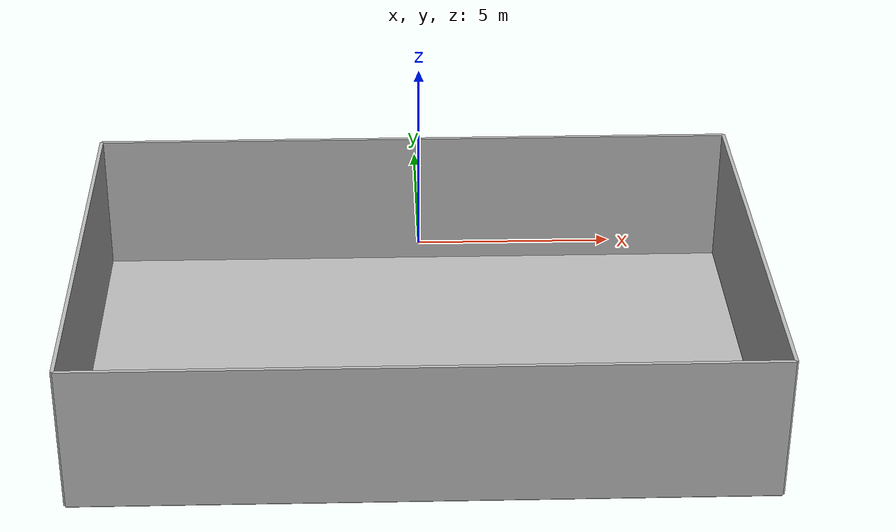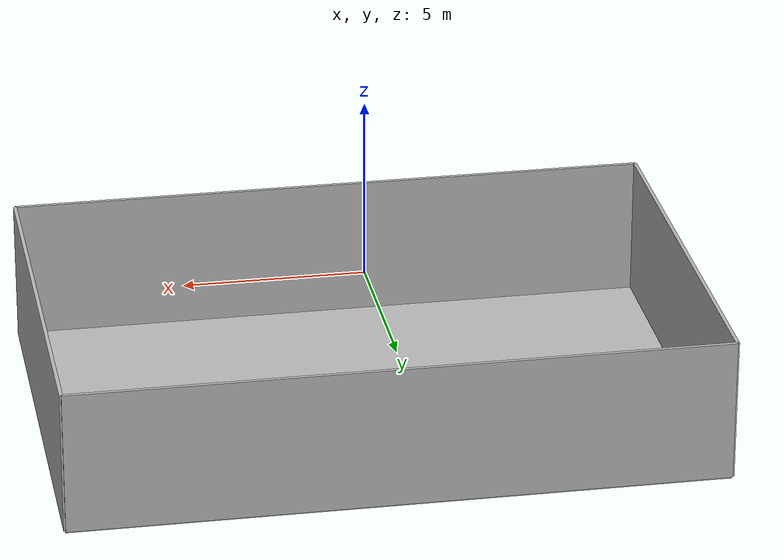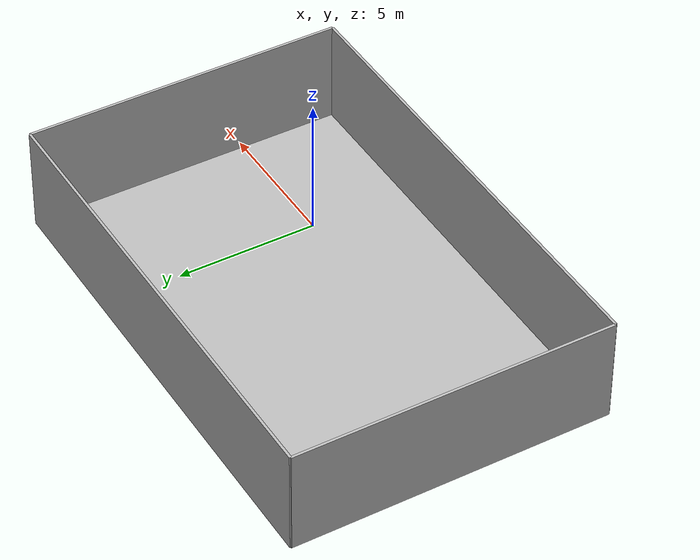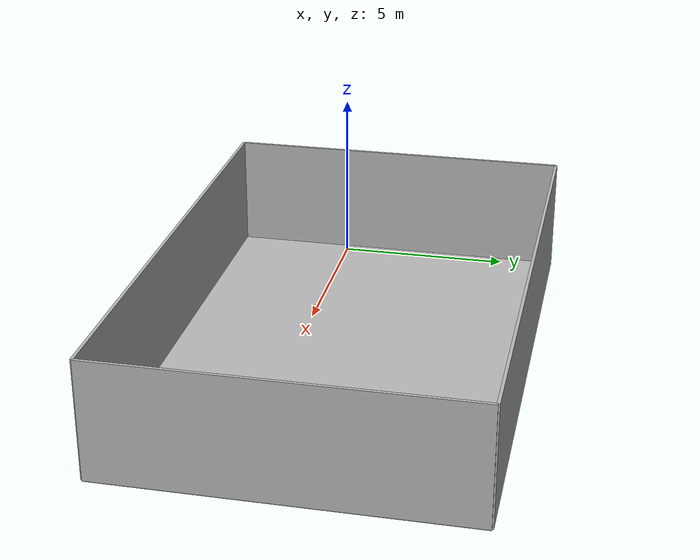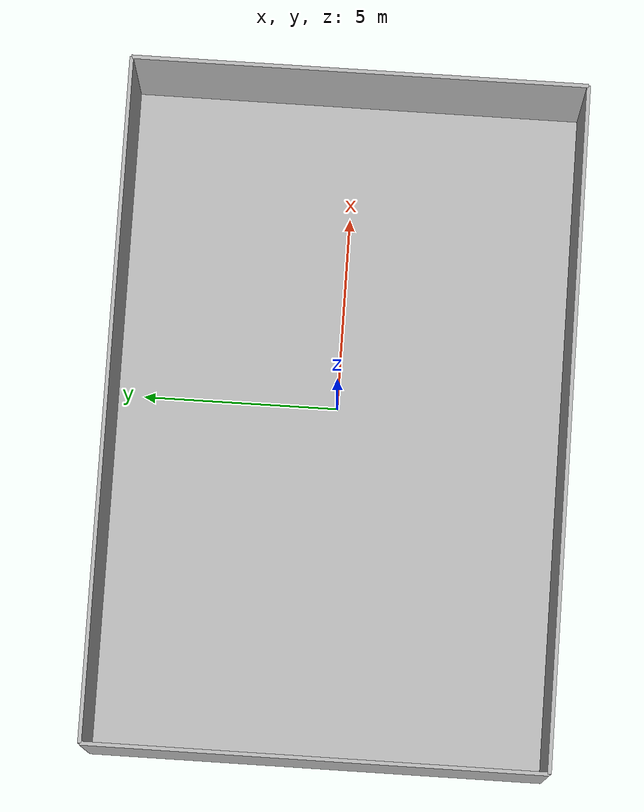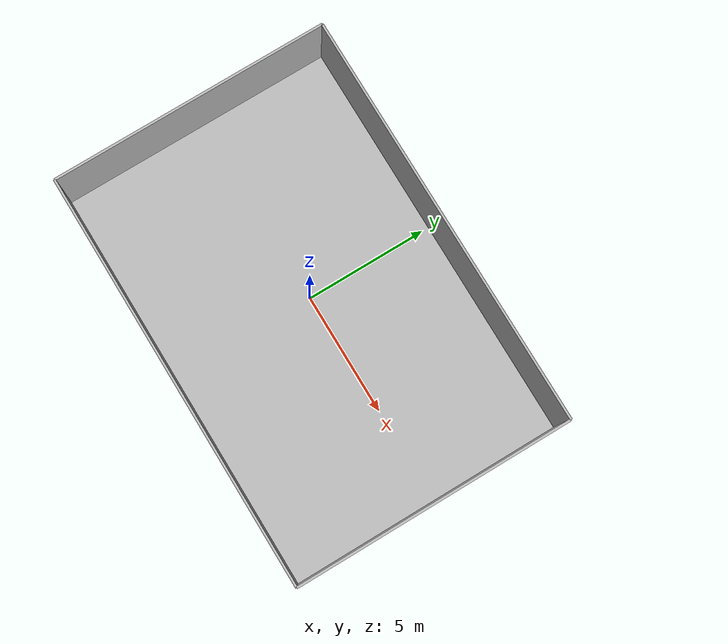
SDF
<?xml version="1.0" ?>
<sdf version="1.5">
  <world name="empty_underwater">
    <physics name="default_physics" default="true" type="ode">
      <max_step_size>0.01</max_step_size>
      <real_time_factor>1</real_time_factor>
      <real_time_update_rate>100</real_time_update_rate>
      <ode>
        <solver>
          <type>quick</type>
          <iters>50</iters>
          <sor>0.5</sor>
        </solver>
      </ode>
    </physics>
    <scene>
      <ambient>0.1 0.2 0.3 1.0</ambient>
      <sky>
        <clouds>
          <speed>12</speed>
        </clouds>
      </sky>
      <shadows>1</shadows>
      <fog>
        <color>0.1 0.2 0.3 1.0</color>
        <type>linear</type>
        <density>1.0</density>
        <start>0.1</start>
        <end>20</end>
      </fog>
    </scene>

    <!-- Origin placed somewhere in the middle of the North Sea  -->
    <spherical_coordinates>
      <latitude_deg>56.71897669633431</latitude_deg>
      <longitude_deg>3.515625</longitude_deg>
    </spherical_coordinates>

    <!-- Global light source -->
    <light type="directional" name="sun">
      <cast_shadows>true</cast_shadows>
      <pose>0 0 10 0 0 0</pose>
      <diffuse>0.2 0.2 0.2 1</diffuse>
      <specular>0.0 0.0 0.0 1</specular>
      <attenuation>
        <range>1000</range>
        <constant>0.9</constant>
        <linear>0.01</linear>
        <quadratic>0.001</quadratic>
        </attenuation>
      <direction>0.5 0.1 -0.9</direction>
    </light>

    <!-- Bounding box with sea surface -->
    <include>
      <uri>model://divewell</uri>
      <pose>0 0 0 0 0 0</pose>
    </include>

    <plugin name="underwater_current_plugin" filename="libuuv_underwater_current_ros_plugin.so">
      <namespace>hydrodynamics</namespace>
      <constant_current>
        <topic>current_velocity</topic>
        <velocity>
          <mean>0</mean>
          <min>0</min>
          <max>5</max>
          <mu>0.0</mu>
          <noiseAmp>0.0</noiseAmp>
        </velocity>

        <horizontal_angle>
          <mean>0</mean>
          <min>-3.141592653589793238</min>
          <max>3.141592653589793238</max>
          <mu>0.0</mu>
          <noiseAmp>0.0</noiseAmp>
        </horizontal_angle>

        <vertical_angle>
          <mean>0</mean>
          <min>-3.141592653589793238</min>
          <max>3.141592653589793238</max>
          <mu>0.0</mu>
          <noiseAmp>0.0</noiseAmp>
        </vertical_angle>
      </constant_current>
    </plugin>

    <plugin name="sc_interface" filename="libuuv_sc_ros_interface_plugin.so"/>

  </world>
</sdf>

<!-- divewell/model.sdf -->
<sdf version="1.5">
  <model name="divewell">
    <static>true</static>
    <link name="link">
      <visual name="ground">
        <cast_shadows>false</cast_shadows>
        <pose>0 0 -4 0 0 0</pose>
        <geometry>
          <box>
            <size>18 12 .1</size>
          </box>
        </geometry>
        <material>
          <script>
            <uri>file://models/shared/pool.material</uri>
            <name>Robosub/PoolWall</name>
          </script>
        </material>
      </visual>

      <collision name="ground">
        <pose>0 0 -4 0 0 0</pose>
        <geometry>
          <box>
            <size>18 12 .1</size>
          </box>
        </geometry>
      </collision>

      <visual name="north">
        <cast_shadows>false</cast_shadows>
        <pose>9 0 -2 0 0 0</pose>
        <geometry>
          <box>
            <size>.1 12 4</size>
          </box>
        </geometry>
        <material>
          <script>
            <uri>file://models/shared/pool.material</uri>
            <name>Robosub/PoolWall</name>
          </script>
        </material>
      </visual>

      <collision name="north">
        <pose>9 0 -2 0 0 0</pose>
        <geometry>
          <box>
            <size>.1 12 4</size>
          </box>
        </geometry>
      </collision>

      <visual name="south">
        <cast_shadows>false</cast_shadows>
        <pose>-9 0 -2 0 0 0</pose>
        <geometry>
          <box>
            <size>.1 12 4</size>
          </box>
        </geometry>
        <material>
          <script>
            <uri>file://models/shared/pool.material</uri>
            <name>Robosub/PoolWall</name>
          </script>
        </material>
      </visual>

      <collision name="south">
        <pose>-9 0 -2 0 0 0</pose>
        <geometry>
          <box>
            <size>.1 12 4</size>
          </box>
        </geometry>
      </collision>

      <visual name="east">
        <cast_shadows>false</cast_shadows>
        <pose>0 -6 -2 0 0 0</pose>
        <geometry>
          <box>
            <size>18 .1 4</size>
          </box>
        </geometry>
        <material>
          <script>
            <uri>file://models/shared/pool.material</uri>
            <name>Robosub/PoolWall</name>
          </script>
        </material>
      </visual>

      <collision name="east">
        <pose>0 -6 -2 0 0 0</pose>
        <geometry>
          <box>
            <size>18 .1 4</size>
          </box>
        </geometry>
      </collision>

      <visual name="west">
        <cast_shadows>false</cast_shadows>
        <pose>0 6 -2 0 0 0</pose>
        <geometry>
          <box>
            <size>18 .1 4</size>
          </box>
        </geometry>
        <material>
          <script>
            <uri>file://models/shared/pool.material</uri>
            <name>Robosub/PoolWall</name>
          </script>
        </material>
      </visual>

      <collision name="west">
        <pose>0 6 -2 0 0 0</pose>
        <geometry>
          <box>
            <size>18 .1 4</size>
          </box>
        </geometry>
      </collision>

    </link>
  </model>
</sdf>
